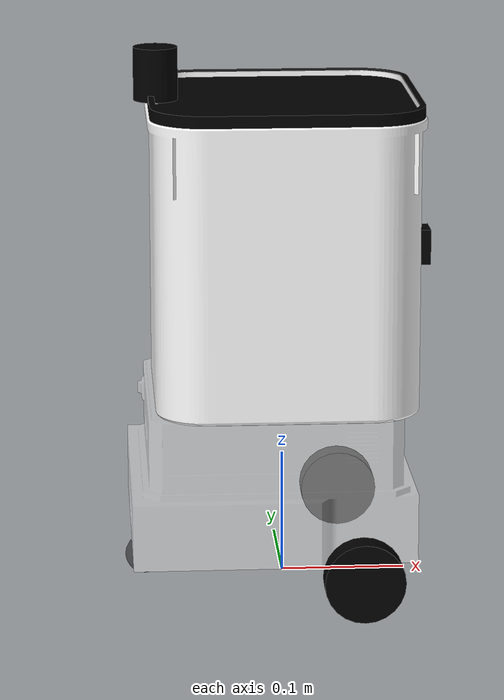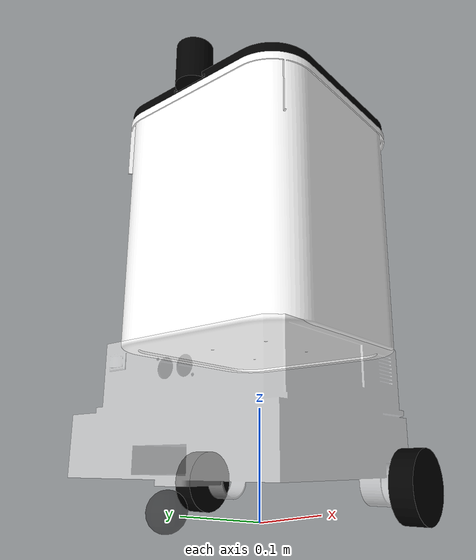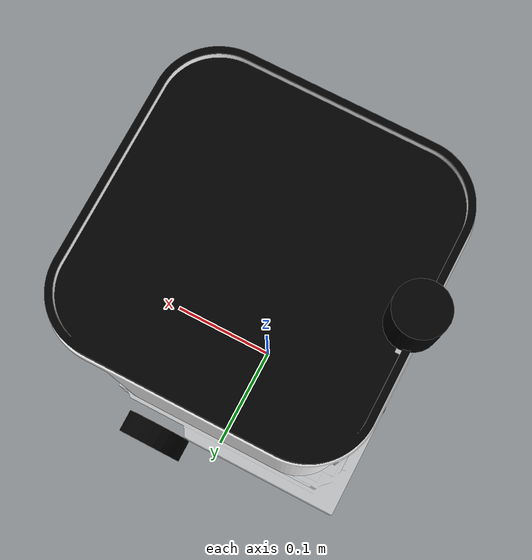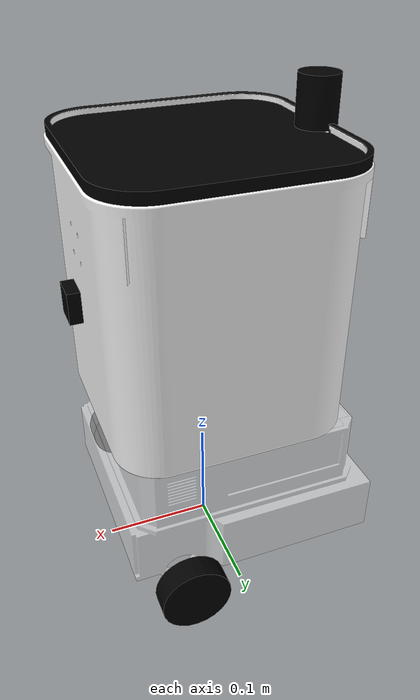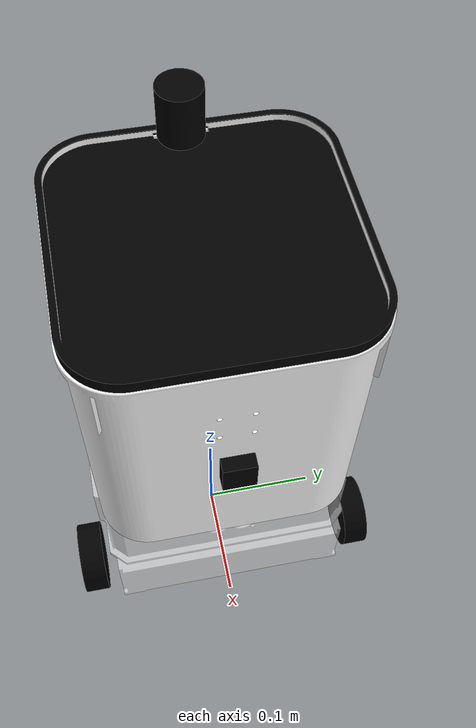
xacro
<?xml version="1.0"?>
<robot xmlns:xacro="http://www.ros.org/wiki/xacro" name="bin_bot">

    <xacro:property name="M_PI" value="3.1415926535897931" />
    <xacro:property name="wheel_radius" value="0.031755" />

    <xacro:arg name="robot_name" default="bin_robot"/>
    <xacro:arg name="prefix" default=""/>
    <xacro:arg name="use_gazebo" default="true"/>
    <xacro:arg name="motor_port" default="/dev/ttyUSB0"/>

    <xacro:include filename="$(find bin_description)/urdf/body/bin_base.urdf.xacro"/>
    <xacro:include filename="$(find bin_description)/urdf/body/bin_wheels.urdf.xacro"/>
    <xacro:include filename="$(find bin_description)/urdf/body/bin_top.urdf.xacro"/>
    <xacro:include filename="$(find bin_description)/urdf/body/bin_cover.urdf.xacro"/>
    <xacro:include filename="$(find bin_description)/urdf/sensors/bin_camera.urdf.xacro"/>
    <xacro:include filename="$(find bin_description)/urdf/sensors/bin_lidar.urdf.xacro"/>

    <xacro:include filename="$(find bin_description)/urdf/ros2_control/bin_ros2_control.xacro"/>
    <xacro:include filename="$(find bin_description)/urdf/gazebo/bin_gazebo.urdf.xacro"/>
    <xacro:include filename="$(find bin_description)/urdf/sensors/bin_imu.urdf.xacro"/>

    <xacro:bin_ros2_control prefix="$(arg prefix)" use_gazebo="$(arg use_gazebo)" device="$(arg motor_port)" />
    <xacro:bin_gazebo prefix="$(arg prefix)" />

    <xacro:bin_base
    prefix="$(arg prefix)"
    z_off="${wheel_radius}"/>  <!--wheel_radius + motor z-offset (0.01) to land wheels on ground-->

    <xacro:bin_wheels
      prefix="$(arg prefix)"/>

    <xacro:bin_top
      prefix="$(arg prefix)"
      height="${base_height}" />

    <xacro:bin_cover
      prefix="$(arg prefix)" />

    <xacro:bin_lidar
      prefix="$(arg prefix)" />

    <xacro:bin_camera
      prefix="$(arg prefix)" />

    <xacro:bin_imu
    prefix="$(arg prefix)" />

</robot>

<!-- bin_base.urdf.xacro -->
<robot xmlns:xacro="http://www.ros.org/wiki/xacro">
<xacro:property name="base_width" value="0.227" />
<xacro:property name="base_length" value="0.224725" />
<xacro:property name="base_height" value="0.12" />
<xacro:property name="com_x" value="0.00489" />     <!--Center of Mass-->
<xacro:property name="com_y" value="-0.00007433" />
<xacro:property name="com_z" value="0.001" />
<xacro:property name="pla_density"        value="1240.0" />
<xacro:property name="metal_density"      value="7850.0" />
<xacro:property name="base_wall_thickness" value="0.004" />
<xacro:property name="base_mass" value="${pla_density * base_wall_thickness * (base_length*base_width + 2*base_width*base_height + 2*base_length*base_height)}" />
<xacro:property name="castor_radius" value="${wheel_radius/2}" />
<xacro:property name="castor_mass" value="${metal_density * (4.0/3.0) * pi * castor_radius * castor_radius * castor_radius}" />

<xacro:macro name="bin_base" params="prefix z_off">
    <link name="${prefix}base_footprint"/>
    <link name="${prefix}base_link">
        <visual>
            <geometry>
                <mesh filename="package://bin_description/meshes/Base.stl" scale="1 1 1"/>
            </geometry>
            <origin xyz="-0.01 0 ${base_height}" rpy="0 0 0"/>
            <material name="white">
                <color rgba="1 1 1 0.5"/>
            </material>
        </visual>
        <collision>
            <geometry>
                <box size="${base_length} ${base_width} ${base_height}"/>
            </geometry>
            <origin xyz="0 0 ${base_height/2}" rpy="0 0 0"/>
        </collision>
        <inertial>
            <origin xyz="0 0 0" rpy="0 0 0"/>
            <mass value="${base_mass}"/>
            <inertia ixx="${(1/12) * base_mass * ((base_width * base_width) + (base_height * base_height))}"  ixy="0.0"  ixz="0.0"
                     iyy="${(1/12) * base_mass * ((base_length * base_length) + (base_height * base_height))}"  iyz="0.0"
                     izz="${(1/12) * base_mass * ((base_length * base_length) + (base_width * base_width))}"/>
        </inertial>
    </link>
    <joint name="${prefix}base_joint" type="fixed">
        <parent link="${prefix}base_footprint"/>
        <child link="${prefix}base_link"/>
        <origin xyz="0 0 ${z_off}" rpy="0 0 0"/>
    </joint>

    <link name="${prefix}bin_castor_link">
        <visual>
            <origin xyz="0.0 0.0 0.0" rpy="0.0 0.0 0.0"/>
            <geometry>
                <sphere radius="${castor_radius}"/>
            </geometry>
            <material name="black">
                <color rgba="0 0 0 0.5"/>
            </material>
        </visual>
        <collision>
            <origin xyz="0.0 0.0 0.0" rpy="0.0 0.0 0.0"/>
            <geometry>
                <sphere radius="${castor_radius}"/>
            </geometry>
        </collision>
        <inertial>
            <mass value="${castor_mass}"/>
            <origin xyz="0.0 0.0 0.0" rpy="0.0 0.0 0.0"/>
            <inertia ixx="${(2/5) * castor_mass * castor_radius * castor_radius}"  ixy="0.0"  ixz="0.0"
                    iyy="${(2/5) * castor_mass * castor_radius * castor_radius}"  iyz="0.0"
                    izz="${(2/5) * castor_mass * castor_radius * castor_radius}"/>
        </inertial>
    </link>

    <joint name="${prefix}base_castor_joint" type="fixed">
        <origin xyz="${-base_length/2} 0.0 ${-castor_radius}" rpy="0.0 0.0 0.0"/>
        <parent link="${prefix}base_link"/>
        <child link="${prefix}bin_castor_link"/>
    </joint>

</xacro:macro>
</robot>

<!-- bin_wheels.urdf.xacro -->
<robot xmlns:xacro="http://www.ros.org/wiki/xacro">
    <xacro:property name="rubber_density" value="1100.0" />
    <xacro:property name="wheel_width" value="0.0214" />
    <xacro:property name="wheel_radius" value="0.031755" />
    <xacro:property name="wheel_mass" value="${rubber_density * pi * wheel_radius * wheel_radius * wheel_width}" />

    <xacro:property name="motor_mass"  value="0.333" />
    <xacro:property name="motor_box_x" value="0.06"  />
    <xacro:property name="motor_box_y" value="0.05"  />
    <xacro:property name="motor_box_z" value="0.05"  />

    <xacro:macro name="bin_motors" params="prefix">

        <link name="${prefix}left_motor_link">
            <visual>
                <geometry>
                    <box size="${motor_box_x} ${motor_box_y} ${motor_box_z}"/>
                </geometry>
                <origin xyz="0 0.03 0" rpy="${pi/2} 0 ${-pi/2}"/>
                <material name="black">
                    <color rgba="0 0 0 1"/>
                </material>
            </visual>
            <collision>
                <geometry>
                    <box size="${motor_box_x} ${motor_box_y} ${motor_box_z}"/>
                </geometry>
                <origin xyz="0 0.03 0" rpy="${pi/2} 0 ${-pi/2}"/>
            </collision>
            <inertial>
                <origin xyz="0 0 0" rpy="0 0 0"/>
                <mass value="${motor_mass}"/>
                <inertia
                ixx="${(1/12) * motor_mass * (motor_box_y*motor_box_y + motor_box_z*motor_box_z)}"  ixy="0.0"  ixz="0.0"
                iyy="${(1/12) * motor_mass * (motor_box_x*motor_box_x + motor_box_z*motor_box_z)}"  iyz="0.0"
                izz="${(1/12) * motor_mass * (motor_box_x*motor_box_x + motor_box_y*motor_box_y)}"/>
            </inertial>

        </link>
        <joint name="${prefix}base_left_motor_joint" type="fixed">
            <parent link="${prefix}base_link"/>
            <child link="${prefix}left_motor_link"/>
            <origin xyz="0.065 0.07 -0.01" rpy="0 0 0"/>
        </joint>

        <link name="${prefix}right_motor_link">
            <visual>
                <geometry>
                    <box size="${motor_box_x} ${motor_box_y} ${motor_box_z}"/>
                </geometry>
                <origin xyz="0 -0.03 0" rpy="${pi/2} 0 ${pi/2}"/>
                <material name="black">
                    <color rgba="0 0 0 1"/>
                </material>
            </visual>
            <collision>
                <geometry>
                    <box size="${motor_box_x} ${motor_box_y} ${motor_box_z}"/>
                </geometry>
                <origin xyz="0 -0.03 0" rpy="${pi/2} 0 ${pi/2}"/>
            </collision>
            <inertial>
                <origin xyz="0 0 0" rpy="0 0 0"/>
                <mass value="${motor_mass}"/>
                <inertia
                ixx="${(1/12) * motor_mass * (motor_box_y*motor_box_y + motor_box_z*motor_box_z)}"  ixy="0.0"  ixz="0.0"
                iyy="${(1/12) * motor_mass * (motor_box_x*motor_box_x + motor_box_z*motor_box_z)}"  iyz="0.0"
                izz="${(1/12) * motor_mass * (motor_box_x*motor_box_x + motor_box_y*motor_box_y)}"/>
            </inertial>

        </link>
        <joint name="${prefix}base_right_motor_joint" type="fixed">
            <parent link="${prefix}base_link"/>
            <child link="${prefix}right_motor_link"/>
            <origin xyz="0.065 -0.07 -0.01" rpy="0 0 0"/>
        </joint>
    </xacro:macro>

    <xacro:macro name="bin_wheels" params="prefix">

        <link name="${prefix}left_wheel_link">
            <visual>
                <geometry>
                    <cylinder radius="${wheel_radius}" length="${wheel_width}"/>
                </geometry>
                <origin xyz="0 0 0" rpy="${pi/2} 0 0"/>
                <material name="black">
                    <color rgba="0 0 0 1"/>
                </material>
            </visual>
            <collision>
                <geometry>
                    <cylinder radius="${wheel_radius}" length="${wheel_width}"/>
                </geometry>
                <origin xyz="0 0 0" rpy="${pi/2} 0 0"/>
            </collision>
            <inertial>
                <origin xyz="0 0 0" rpy="0 0 0"/>
                <mass value="${wheel_mass}"/>
                <inertia
                ixx="${(wheel_mass/12.0) * (3*wheel_radius*wheel_radius + wheel_width*wheel_width)}" ixy="0" ixz="0"
                iyy="${(wheel_mass/2.0) * (wheel_radius*wheel_radius)}" iyz="0"
                izz="${(wheel_mass/12.0) * (3*wheel_radius*wheel_radius + wheel_width*wheel_width)}"/>
            </inertial>

        </link>
        <joint name="${prefix}base_left_wheel_joint" type="continuous">
            <parent link="${prefix}base_link"/>
            <child link="${prefix}left_wheel_link"/>
            <origin xyz="${base_length/4} ${base_width/2 + wheel_width/2} 0" rpy="0 0 0"/>
            <axis xyz="0.0 1.0 0.0"/>
        </joint>

        <link name="${prefix}right_wheel_link">
            <visual>
                <geometry>
                    <cylinder radius="${wheel_radius}" length="${wheel_width}"/>
                </geometry>
                <origin xyz="0 0 0" rpy="${pi/2} 0 0"/>
                <material name="black">
                    <color rgba="0 0 0 1"/>
                </material>
            </visual>
            <collision>
                <geometry>
                    <cylinder radius="${wheel_radius}" length="${wheel_width}"/>
                </geometry>
                <origin xyz="0 0 0" rpy="${pi/2} 0 0"/>
            </collision>
            <inertial>
                <origin xyz="0 0 0" rpy="0 0 0"/>
                <mass value="${wheel_mass}"/>
                <inertia
                ixx="${(wheel_mass/12.0) * (3*wheel_radius*wheel_radius + wheel_width*wheel_width)}" ixy="0" ixz="0"
                iyy="${(wheel_mass/2.0) * (wheel_radius*wheel_radius)}" iyz="0"
                izz="${(wheel_mass/12.0) * (3*wheel_radius*wheel_radius + wheel_width*wheel_width)}"/>
            </inertial>

        </link>
        <joint name="${prefix}base_right_wheel_joint" type="continuous">
            <parent link="${prefix}base_link"/>
            <child link="${prefix}right_wheel_link"/>
            <origin xyz="${base_length/4} ${-(base_width/2 + wheel_width/2)} 0" rpy="0 0 0"/>
            <axis xyz="0.0 1.0 0.0"/>
        </joint>

    </xacro:macro>

</robot>

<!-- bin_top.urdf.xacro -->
<robot xmlns:xacro="http://www.ros.org/wiki/xacro">
    <xacro:property name="plastic_density"    value="1050.0" />
    <xacro:property name="bin_wall_thickness" value="0.004"  />
    <xacro:property name="bin_length" value="0.20" />
    <xacro:property name="bin_width" value="0.20" />
    <xacro:property name="bin_height" value="0.24" />

    <xacro:property name="bin_mass" value="0.1" />

    <xacro:macro name="bin_top" params="prefix height">

        <link name="${prefix}bin_top_link">
            <visual>
                <geometry>
                    <mesh filename="package://bin_description/meshes/Bin.stl" scale="0.8 0.8 0.8"/>
                </geometry>
                <origin xyz="0 0 0" rpy="0 0 0"/>
                <material name="white">
                    <color rgba="1 1 1 1"/>
                </material>
            </visual>
            <collision>
                <geometry>
                    <box size="${bin_length} ${bin_width} ${bin_height}"/>
                </geometry>
                <origin xyz="0 0 ${bin_height/2}" rpy="0 0 0"/>
            </collision>
            <inertial>
                <origin xyz="0 0 0" rpy="0 0 0"/>
                <mass value="${bin_mass}"/>
                <inertia ixx="${(1/12) * bin_mass * ((bin_width * bin_width) + (bin_height * bin_height))}"  ixy="0.0"  ixz="0.0"
                        iyy="${(1/12) * bin_mass * ((bin_length * bin_length) + (bin_height * bin_height))}"  iyz="0.0"
                        izz="${(1/12) * bin_mass * ((bin_length * bin_length) + (bin_width * bin_width))}"/>
            </inertial>

        </link>
        <joint name="${prefix}base_top_joint" type="fixed">
            <parent link="${prefix}base_link"/>
            <child link="${prefix}bin_top_link"/>
            <origin xyz="0 0 ${height}" rpy="0 0 0"/>
        </joint>
    </xacro:macro>
</robot>

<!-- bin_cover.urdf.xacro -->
<robot xmlns:xacro="http://www.ros.org/wiki/xacro">
    <xacro:property name="plastic_density" value="1050.0" />
    <xacro:property name="cover_length" value="0.2" />
    <xacro:property name="cover_width" value="0.2" />
    <xacro:property name="cover_height" value="0.012" />
    <xacro:property name="cover_mass" value="${plastic_density * cover_length * cover_width * cover_height}" />

    <xacro:macro name="bin_cover" params="prefix">

        <link name="${prefix}bin_cover_link">
            <visual>
                <geometry>
                    <mesh filename="package://bin_description/meshes/Cover.stl" scale="0.8 0.8 0.8"/>
                </geometry>
                <origin xyz="${cover_length/2} 0.0 ${-bin_height}" rpy="0 0 0"/>
                <material name="black">
                    <color rgba="0 0 0 1"/>
                </material>
            </visual>
            <collision>
                <geometry>
                    <box size="${cover_length} ${cover_width} ${cover_height}"/>
                </geometry>
                <origin xyz="${cover_length/2} 0 0" rpy="0 0 0"/>
            </collision>
            <inertial>
                <origin xyz="0 0 0" rpy="0 0 0"/>
                <mass value="${cover_mass}"/>
                <inertia ixx="${(1/12) * cover_mass * ((cover_width * cover_width) + (cover_height * cover_height))}"  ixy="0.0"  ixz="0.0"
                        iyy="${(1/12) * cover_mass * ((cover_length * cover_length) + (cover_height * cover_height))}"  iyz="0.0"
                        izz="${(1/12) * cover_mass * ((cover_length * cover_length) + (cover_width * cover_width))}"/>
            </inertial>

        </link>
        <joint name="${prefix}bin_cover_joint" type="revolute">
            <parent link="${prefix}bin_top_link"/>
            <child link="${prefix}bin_cover_link"/>
            <origin xyz="${-cover_length/2} 0 ${bin_height}" rpy="0 0 0"/>

            <axis xyz="0 1 0"/>
            <limit lower="${-pi/2}" upper="0" effort="100" velocity="1.0"/>
        </joint>
    </xacro:macro>
</robot>

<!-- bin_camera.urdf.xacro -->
<robot xmlns:xacro="http://www.ros.org/wiki/xacro">
    <xacro:property name="plastic_density" value="1050.0" />
    <xacro:property name="camera_length" value="0.025" />
    <xacro:property name="camera_width" value="0.028062" />
    <xacro:property name="camera_height" value="0.011346" />
    <xacro:property name="camera_mass" value="${plastic_density * camera_length * camera_width * camera_height}" />

    <xacro:macro name="bin_camera" params="prefix">

        <link name="${prefix}bin_camera_link">
            <visual>
                <geometry>
                    <box size="${camera_length} ${camera_width} ${camera_height}"/>
                </geometry>
                <origin xyz="0 0 0" rpy="${pi/2} 0 ${pi/2}"/>
                <material name="black">
                    <color rgba="0 0 0 1"/>
                </material>
            </visual>
            <collision>
                <geometry>
                    <box size="${camera_length} ${camera_width} ${camera_height}"/>
                </geometry>
                <origin xyz="0 0 0" rpy="${pi/2} 0 ${pi/2}"/>
            </collision>
            <inertial>
                <origin xyz="0 0 0" rpy="0 0 0"/>
                <mass value="${camera_mass}"/>
                <inertia ixx="${(1/12) * camera_mass * ((camera_width * camera_width) + (camera_height * camera_height))}"  ixy="0.0"  ixz="0.0"
                        iyy="${(1/12) * camera_mass * ((camera_length * camera_length) + (camera_height * camera_height))}"  iyz="0.0"
                        izz="${(1/12) * camera_mass * ((camera_length * camera_length) + (camera_width * camera_width))}"/>
            </inertial>

        </link>
        <joint name="${prefix}bin_top_camera_joint" type="fixed">
            <parent link="${prefix}bin_top_link"/>
            <child link="${prefix}bin_camera_link"/>
            <origin xyz="${bin_length/2 + camera_length/2} 0 ${bin_height/2}" rpy="0 0 0"/>
        </joint>

        <link name="${prefix}camera_rgb_optical_frame"/>
        <joint name="${prefix}camera_rgb_optical_joint" type="fixed">
            <parent link="${prefix}bin_camera_link"/>
            <child link="${prefix}camera_rgb_optical_frame"/>
            <origin xyz="0 0 0" rpy="${-pi/2} 0 ${-pi/2}"/>
        </joint>
    </xacro:macro>
</robot>

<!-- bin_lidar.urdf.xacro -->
<robot xmlns:xacro="http://www.ros.org/wiki/xacro">
    <xacro:property name="plastic_density" value="1050.0" />
    <xacro:property name="lidar_radius" value="0.0175" />
    <xacro:property name="lidar_height" value="0.042" />
    <xacro:property name="lidar_mass" value="${plastic_density * pi * lidar_radius * lidar_radius * lidar_height}" />

    <xacro:macro name="bin_lidar" params="prefix">

        <link name="${prefix}lidar_link">
            <visual>
                <geometry>
                    <cylinder radius="${lidar_radius}" length="${lidar_height}"/>
                </geometry>
                <origin xyz="0 0 0" rpy="0 0 0"/>
                <material name="black">
                    <color rgba="0 0 0 1"/>
                </material>
            </visual>
            <collision>
                <geometry>
                    <cylinder radius="${lidar_radius}" length="${lidar_height}"/>
                </geometry>
                <origin xyz="0 0 0" rpy="0 0 0"/>
            </collision>
            <inertial>
                <origin xyz="0 0 0" rpy="0 0 0"/>
                <mass value="${lidar_mass}"/>
                <!-- Solid cylinder: Ixx=Iyy = m*(3r^2+h^2)/12, Izz = m*r^2/2 -->
                <inertia
                    ixx="${(lidar_mass / 12.0) * (3 * lidar_radius * lidar_radius + lidar_height * lidar_height)}"  ixy="0.0"  ixz="0.0"
                    iyy="${(lidar_mass / 12.0) * (3 * lidar_radius * lidar_radius + lidar_height * lidar_height)}"  iyz="0.0"
                    izz="${(lidar_mass / 2.0) * (lidar_radius * lidar_radius)}"/>
            </inertial>
        </link>

        <joint name="${prefix}bin_cover_lidar_joint" type="fixed">
            <parent link="${prefix}bin_cover_link"/>
            <child link="${prefix}lidar_link"/>
            <!-- Centred on top face of the cover panel -->
            <origin xyz="0 0 ${lidar_height/2}" rpy="0 0 0"/>
        </joint>

    </xacro:macro>
</robot>

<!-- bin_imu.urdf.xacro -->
<robot xmlns:xacro="http://www.ros.org/wiki/xacro">
  <xacro:property name="M_PI" value="3.1415926535897931" />
  <xacro:property name="imu_mass" value="0.050" />  <!-- 9-DOF IMU module with PCB ~50 g -->
  <xacro:property name="imu_length" value="0.0259" />
  <xacro:property name="imu_width" value="0.0155" />
  <xacro:property name="imu_height" value="0.015" />
  <xacro:property name="com_x" value="-0.000082" />     <!--Center of Mass-->
  <xacro:property name="com_y" value="-0.000041" />
  <xacro:property name="com_z" value="0.010541" />
  <xacro:property name="stand_height" value="${imu_height}" />

  <xacro:property name="imu_x" value="0.0" />
  <xacro:property name="imu_y" value="0.0" />
  <xacro:property name="imu_z" value="0.05" />

  <xacro:macro name="bin_imu" params="prefix">

    <link name="${prefix}imu_link">
      <visual>
        <origin xyz="0 0 0" rpy="0 0 0"/>

        <geometry>
            <box size="${imu_length} ${imu_width} ${imu_height}"/>
        </geometry>

        <material name="black">
          <color rgba="0 0 0 0.5"/>
        </material>
      </visual>

      <inertial>
          <origin xyz="${com_x} ${com_y} ${com_z}" rpy="0 0 0"/>
          <mass value="${imu_mass}"/>
          <inertia ixx="${(1/12) * imu_mass * ((imu_width * imu_width) + (imu_height * imu_height))}"  ixy="0.0"  ixz="0.0"
                    iyy="${(1/12) * imu_mass * ((imu_length * imu_length) + (imu_height * imu_height))}"  iyz="0.0"
                    izz="${(1/12) * imu_mass * ((imu_length * imu_length) + (imu_width * imu_width))}"/>
      </inertial>
    </link>

    <joint name="${prefix}imu_joint" type="fixed">
      <parent link="${prefix}base_link"/>
      <child link="${prefix}imu_link"/>
      <origin xyz="${imu_x} ${imu_y} ${imu_z}" rpy="0 0 0"/>
    </joint>
  </xacro:macro>
</robot>
